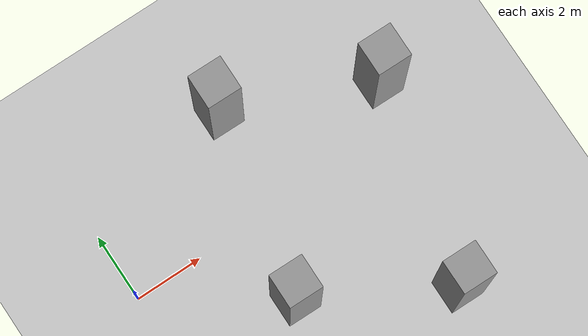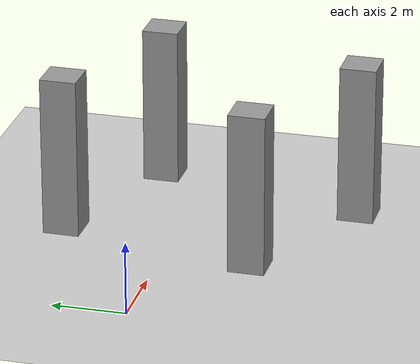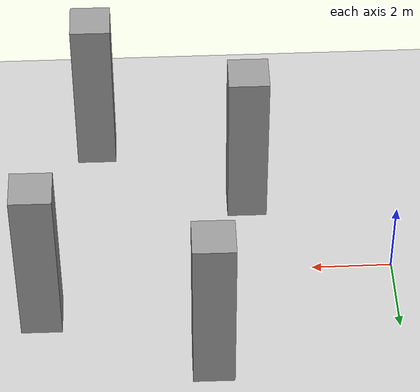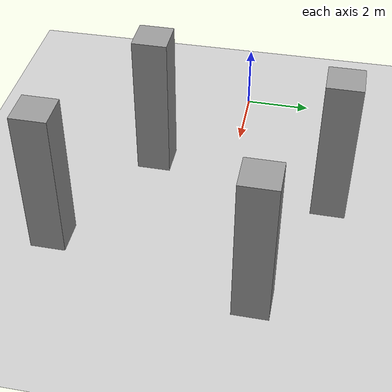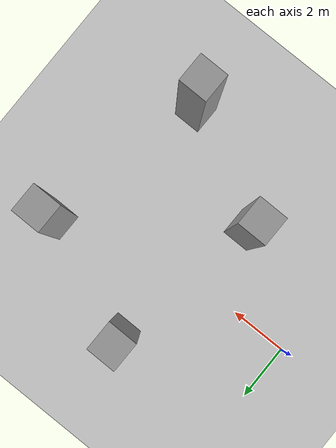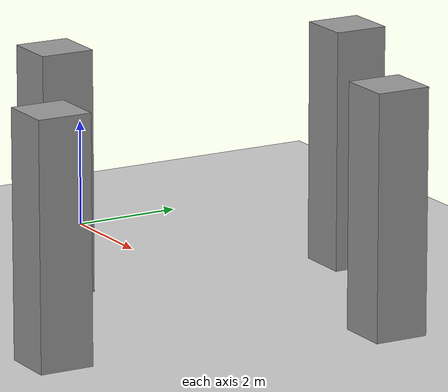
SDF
<sdf version="1.7">
 <world name="default">
  <light name="sun" type="directional">
   <pose>0 0 10 0 -0 0</pose>
   <diffuse>0.8 0.8 0.8 1</diffuse>
   <specular>0.2 0.2 0.2 1</specular>
   <attenuation>
    <range>1000</range>
    <constant>0.9</constant>
    <linear>0.01</linear>
    <quadratic>0.001</quadratic>
   </attenuation>
   <direction>-0.5 0.1 -0.9</direction>
   <spot><inner_angle>0</inner_angle><outer_angle>0</outer_angle><falloff>0</falloff></spot>
  </light>
  <include><uri>model://ground_plane</uri></include>
  <physics name="default_physics" default="0" type="ode">
   <ode>
    <solver>
     <type>quick</type>
     <iters>50</iters>
     <sor>1.3</sor>
     <use_dynamic_moi_rescaling>0</use_dynamic_moi_rescaling>
    </solver>
    <constraints>
     <cfm>0</cfm>
     <erp>0.2</erp>
     <contact_max_correcting_vel>100</contact_max_correcting_vel>
     <contact_surface_layer>0.001</contact_surface_layer>
    </constraints>
   </ode>
   <max_step_size>0.004</max_step_size>
   <real_time_factor>1</real_time_factor>
   <real_time_update_rate>250</real_time_update_rate>
  </physics>
  <gravity>0 0 -9.8066</gravity>
  <magnetic_field>6e-06 2.3e-05 -4.2e-05</magnetic_field>
  <atmosphere type="adiabatic"/>
  <scene><ambient>0.4 0.4 0.4 1</ambient><background>0.7 0.7 0.7 1</background><shadows>1</shadows></scene>
  <spherical_coordinates>
   <surface_model>EARTH_WGS84</surface_model>
   <latitude_deg>0</latitude_deg>
   <longitude_deg>0</longitude_deg>
   <elevation>0</elevation>
   <heading_deg>0</heading_deg>
  </spherical_coordinates>
  <plugin name="wind_plugin" filename="libgazebo_wind_plugin.so">
   <frameId>base_link</frameId>
   <windVelocityMean>500.0</windVelocityMean>
   <windVelocityMax>20.0</windVelocityMax>
   <windVelocityVariance>0</windVelocityVariance>
   <windDirectionMean>0 1 0</windDirectionMean>
   <windDirectionVariance>0</windDirectionVariance>
   <windGustStart>0</windGustStart>
   <windGustDuration>0</windGustDuration>
   <windGustVelocityMean>0</windGustVelocityMean>
   <windGustVelocityMax>20.0</windGustVelocityMax>
   <windGustVelocityVariance>0</windGustVelocityVariance>
   <windGustDirectionMean>1 0 0</windGustDirectionMean>
   <windGustDirectionVariance>0</windGustDirectionVariance>
   <windPubTopic>world_wind</windPubTopic>
  </plugin>
  <model name="unit_box">
   <pose>3.52126 -2.39894 2.23693 0 1.7e-05 -0.007943</pose>
   <link name="link">
    <inertial>
     <mass>1</mass>
     <inertia>
      <ixx>0.166667</ixx>
      <ixy>0</ixy>
      <ixz>0</ixz>
      <iyy>0.166667</iyy>
      <iyz>0</iyz>
      <izz>0.166667</izz>
     </inertia>
    </inertial>
    <collision name="collision"><geometry><box><size>1 1 4.47386</size></box></geometry></collision>
    <visual name="visual">
     <geometry><box><size>1 1 4.47386</size></box></geometry>
     <material>
      <script><name>Gazebo/Grey</name><uri>file://media/materials/scripts/gazebo.material</uri></script>
     </material>
    </visual>
   </link>
  </model>
  <model name="unit_box_clone">
   <pose>4.61393 3.02379 2.23693 0 -1.7e-05 -0.007533</pose>
   <link name="link">
    <inertial>
     <mass>1</mass>
     <inertia>
      <ixx>0.166667</ixx>
      <ixy>0</ixy>
      <ixz>0</ixz>
      <iyy>0.166667</iyy>
      <iyz>0</iyz>
      <izz>0.166667</izz>
     </inertia>
    </inertial>
    <collision name="collision"><geometry><box><size>1 1 4.47386</size></box></geometry></collision>
    <visual name="visual">
     <geometry><box><size>1 1 4.47386</size></box></geometry>
     <material>
      <script><name>Gazebo/Grey</name><uri>file://media/materials/scripts/gazebo.material</uri></script>
     </material>
    </visual>
   </link>
  </model>
  <model name="unit_box_clone_0">
   <pose>8.7349 1.3387 2.23693 2e-06 -2.6e-05 -0.006774</pose>
   <link name="link">
    <inertial>
     <mass>1</mass>
     <inertia>
      <ixx>0.166667</ixx>
      <ixy>0</ixy>
      <ixz>0</ixz>
      <iyy>0.166667</iyy>
      <iyz>0</iyz>
      <izz>0.166667</izz>
     </inertia>
    </inertial>
    <collision name="collision"><geometry><box><size>1 1 4.47386</size></box></geometry></collision>
    <visual name="visual">
     <geometry><box><size>1 1 4.47386</size></box></geometry>
     <material>
      <script><name>Gazebo/Grey</name><uri>file://media/materials/scripts/gazebo.material</uri></script>
     </material>
    </visual>
   </link>
  </model>
  <model name="unit_box_clone_1">
   <pose>7.38483 -4.52891 2.23693 -1.7e-05 0 -0.006104</pose>
   <link name="link">
    <inertial>
     <mass>1</mass>
     <inertia>
      <ixx>0.166667</ixx>
      <ixy>0</ixy>
      <ixz>0</ixz>
      <iyy>0.166667</iyy>
      <iyz>0</iyz>
      <izz>0.166667</izz>
     </inertia>
    </inertial>
    <collision name="collision"><geometry><box><size>1 1 4.47386</size></box></geometry></collision>
    <visual name="visual">
     <geometry><box><size>1 1 4.47386</size></box></geometry>
     <material>
      <script><name>Gazebo/Grey</name><uri>file://media/materials/scripts/gazebo.material</uri></script>
     </material>
    </visual>
   </link>
  </model>
 </world>
</sdf>
